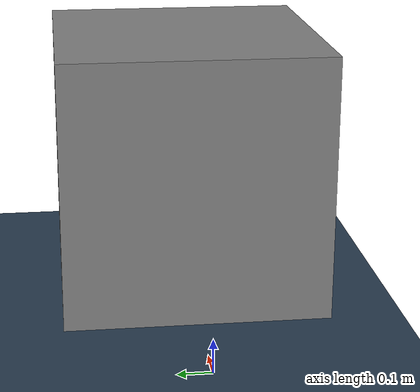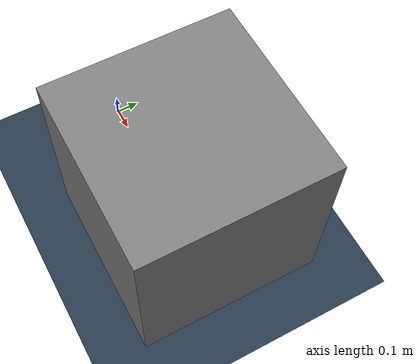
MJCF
<mujoco model="table_arena">
  <asset>
    <texture name="texplane" type="2d" builtin="checker" rgb1=".2 .3 .4" rgb2=".1 0.15 0.2"
                width="512" height="512"/>
    <material name="MatGnd" reflectance="0.5" texture="texplane" texrepeat="1 1" texuniform="true"/>
    <texture type="skybox" builtin="gradient" rgb1="1 1 1" rgb2=".6 .8 1" width="256" height="256"/>

    <texture file="../textures/ceramic.png" type="cube" name="tex-ceramic"/>
    <material name="table_ceramic" reflectance="0.0" shininess="0.0" specular="0.2" texrepeat="1 1" texture="tex-ceramic" />

    <!-- steel legs -->
    <texture file="../textures/steel-brushed.png" type="cube" name="tex-steel-brushed"/>
    <material name="table_legs_metal" reflectance="0.8" shininess="0.8" texrepeat="1 1" texture="tex-steel-brushed" />

    <!-- plaster walls -->
    <texture file="../textures/cream-plaster.png" type="2d" name="tex-cream-plaster"/>
    <material name="walls_mat" reflectance="0.0" shininess="0.1" specular="0.1" texrepeat="3 3" texture="tex-cream-plaster" texuniform="true" />

    <!-- added table texture and material for domain randomization -->
    <texture  name="textable" builtin="flat" height="512" width="512" rgb1="0.5 0.5 0.5" rgb2="0.5 0.5 0.5"/>
    <material name="table_mat" texture="textable" />

  </asset>
  <worldbody>
    <light directional="false" diffuse=".8 .8 .8" specular="0.3 0.3 0.3" pos="1  1 3" dir="-1 -1 -3"/>
    <geom name="ground" pos="0 0 0" size="5 5 10" material="MatGnd" type="plane" contype="1" conaffinity="1"/>
    <!-- Table body -->
    <body name="table" pos="0.7 0 0.4">
      <geom pos="0 0 0" size="0.4 0.4 0.4" type="box" group="0" name="table_collision" friction="1 0.005 0.0001"/>
      <geom pos="0 0 0" size="0.4 0.4 0.4" type="box" conaffinity="0" contype="0" group="1" name="table_visual" material="table_ceramic"/>
      <site pos="0 0 0.4" name="table_top" size="0.001 0.001 0.001" rgba="0 0 0 0"/>
      <!-- Legs (visual only) -->
      <geom pos="0 0 0" size="0.05 0.1" type="cylinder" conaffinity="0" contype="0" group="1" name="table_leg1_visual" material="table_legs_metal"/>
      <geom pos="0 0 0" size="0.05 0.1" type="cylinder" conaffinity="0" contype="0" group="1" name="table_leg2_visual" material="table_legs_metal"/>
      <geom pos="0 0 0" size="0.05 0.1" type="cylinder" conaffinity="0" contype="0" group="1" name="table_leg3_visual" material="table_legs_metal"/>
      <geom pos="0 0 0" size="0.05 0.1" type="cylinder" conaffinity="0" contype="0" group="1" name="table_leg4_visual" material="table_legs_metal"/>
    </body>

    <light name="light1" diffuse=".8 .8 .8" dir="0 -.15 -1" directional="false" pos="1 1 4.0" specular="0.3 0.3 0.3" castshadow="false"/>
    <light name="light2" diffuse=".8 .8 .8" dir="0 -.15 -1" directional="false" pos="-3. -3. 4.0" specular="0.3 0.3 0.3" castshadow="false"/>
    <!-- front view -->
    <camera mode="fixed" name="frontview" pos="1.6 0 1.45" quat="0.56 0.43 0.43 0.56"/>
    <!-- bird view -->
    <camera mode="fixed" name="birdview" pos="-0.2 0 3.0" quat="0.7071 0 0 0.7071"/>
    <!-- agent view -->
    <camera mode="fixed" name="agentview" pos="0.5 0 1.35" quat="0.653 0.271 0.271 0.653"/>
    <!-- side view -->
    <camera mode="fixed" name="sideview" pos="-0.05651774593317116 1.2761224129427358 1.4879572214102434" quat="0.009905065491771751 0.006877963156909582 0.5912228352893879 0.806418094001364" />
  </worldbody>
</mujoco>
